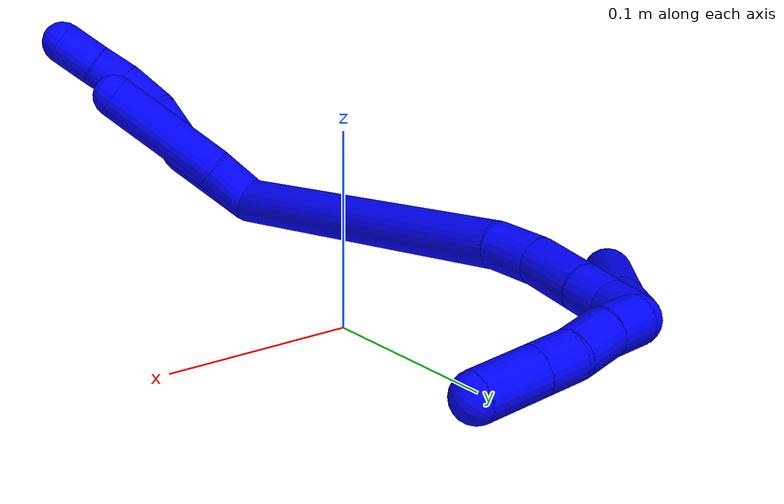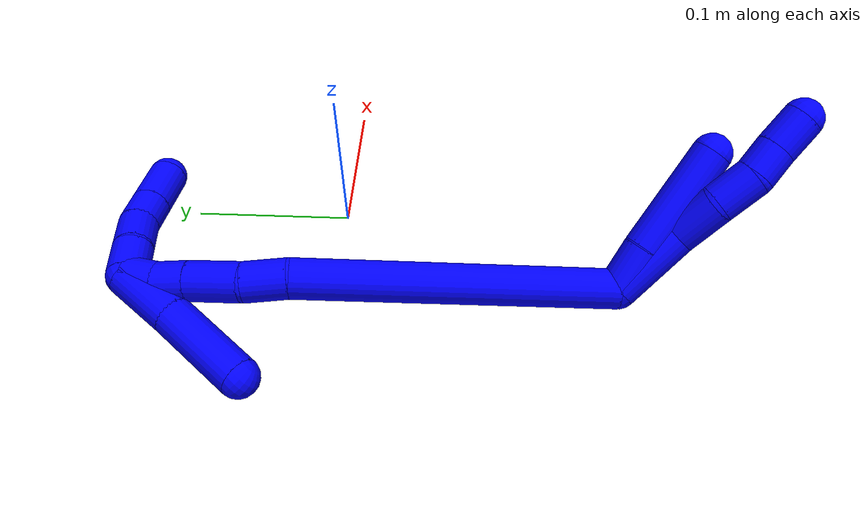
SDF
<sdf version="1.7">
 <world name="default">
  <model name="1">
   <static>0</static>
   <link name="1">
    <collision name="collision-cylinder-e_1_2_8">
     <pose>0.000252 -0.000121 0.024471 0.004957 0.010288 2.6e-05</pose>
     <geometry><cylinder><radius>0.0125</radius><length>0.048945</length></cylinder></geometry>
     <surface>
      <friction><ode><mu>1.16</mu><mu2>1.16</mu2><slip1>0</slip1><slip2>0</slip2></ode></friction>
      <contact><ode><kp>1e+06</kp><kd>1</kd><max_vel>0</max_vel><min_depth>0.001</min_depth></ode></contact>
     </surface>
    </collision>
    <visual name="visual-cylinder-e_1_2_8">
     <pose>0.000252 -0.000121 0.024471 0.004957 0.010288 2.6e-05</pose>
     <geometry><cylinder><radius>0.0125</radius><length>0.048945</length></cylinder></geometry>
     <material><ambient>0 0 1 1</ambient></material>
    </visual>
    <collision name="collision-cylinder-e_2_8_9">
     <pose>-0.004194 -0.001502 0.06341 0.086825 -0.312833 -0.013701</pose>
     <geometry><cylinder><radius>0.0125</radius><length>0.030526</length></cylinder></geometry>
     <surface>
      <friction><ode><mu>1.16</mu><mu2>1.16</mu2><slip1>0</slip1><slip2>0</slip2></ode></friction>
      <contact><ode><kp>1e+06</kp><kd>1</kd><max_vel>0</max_vel><min_depth>0.001</min_depth></ode></contact>
     </surface>
    </collision>
    <visual name="visual-cylinder-e_2_8_9">
     <pose>-0.004194 -0.001502 0.06341 0.086825 -0.312833 -0.013701</pose>
     <geometry><cylinder><radius>0.0125</radius><length>0.030526</length></cylinder></geometry>
     <material><ambient>0 0 1 1</ambient></material>
    </visual>
    <collision name="collision-cylinder-e_3_9_10">
     <pose>-0.009689 -0.00415 0.091014 0.105334 -0.060356 -0.003183</pose>
     <geometry><cylinder><radius>0.0125</radius><length>0.026467</length></cylinder></geometry>
     <surface>
      <friction><ode><mu>1.16</mu><mu2>1.16</mu2><slip1>0</slip1><slip2>0</slip2></ode></friction>
      <contact><ode><kp>1e+06</kp><kd>1</kd><max_vel>0</max_vel><min_depth>0.001</min_depth></ode></contact>
     </surface>
    </collision>
    <visual name="visual-cylinder-e_3_9_10">
     <pose>-0.009689 -0.00415 0.091014 0.105334 -0.060356 -0.003183</pose>
     <geometry><cylinder><radius>0.0125</radius><length>0.026467</length></cylinder></geometry>
     <material><ambient>0 0 1 1</ambient></material>
    </visual>
    <collision name="collision-cylinder-e_4_10_11">
     <pose>-0.009804 -0.003935 0.11405 -0.160593 0.06802 -0.005476</pose>
     <geometry><cylinder><radius>0.0125</radius><length>0.020104</length></cylinder></geometry>
     <surface>
      <friction><ode><mu>1.16</mu><mu2>1.16</mu2><slip1>0</slip1><slip2>0</slip2></ode></friction>
      <contact><ode><kp>1e+06</kp><kd>1</kd><max_vel>0</max_vel><min_depth>0.001</min_depth></ode></contact>
     </surface>
    </collision>
    <visual name="visual-cylinder-e_4_10_11">
     <pose>-0.009804 -0.003935 0.11405 -0.160593 0.06802 -0.005476</pose>
     <geometry><cylinder><radius>0.0125</radius><length>0.020104</length></cylinder></geometry>
     <material><ambient>0 0 1 1</ambient></material>
    </visual>
    <collision name="collision-cylinder-e_5_11_6">
     <pose>-0.008714 -0.001132 0.135861 -0.100378 0.033975 -0.001707</pose>
     <geometry><cylinder><radius>0.0125</radius><length>0.023957</length></cylinder></geometry>
     <surface>
      <friction><ode><mu>1.16</mu><mu2>1.16</mu2><slip1>0</slip1><slip2>0</slip2></ode></friction>
      <contact><ode><kp>1e+06</kp><kd>1</kd><max_vel>0</max_vel><min_depth>0.001</min_depth></ode></contact>
     </surface>
    </collision>
    <visual name="visual-cylinder-e_5_11_6">
     <pose>-0.008714 -0.001132 0.135861 -0.100378 0.033975 -0.001707</pose>
     <geometry><cylinder><radius>0.0125</radius><length>0.023957</length></cylinder></geometry>
     <material><ambient>0 0 1 1</ambient></material>
    </visual>
    <collision name="collision-cylinder-e_1_2_12">
     <pose>-0.000968 0.003591 0.014093 -0.249521 -0.066483 0.008341</pose>
     <geometry><cylinder><radius>0.0125</radius><length>0.029151</length></cylinder></geometry>
     <surface>
      <friction><ode><mu>1.16</mu><mu2>1.16</mu2><slip1>0</slip1><slip2>0</slip2></ode></friction>
      <contact><ode><kp>1e+06</kp><kd>1</kd><max_vel>0</max_vel><min_depth>0.001</min_depth></ode></contact>
     </surface>
    </collision>
    <visual name="visual-cylinder-e_1_2_12">
     <pose>-0.000968 0.003591 0.014093 -0.249521 -0.066483 0.008341</pose>
     <geometry><cylinder><radius>0.0125</radius><length>0.029151</length></cylinder></geometry>
     <material><ambient>0 0 1 1</ambient></material>
    </visual>
    <collision name="collision-cylinder-e_2_12_5">
     <pose>-0.001611 0.014364 0.062873 -0.204157 0.009191 -0.000942</pose>
     <geometry><cylinder><radius>0.0125</radius><length>0.070849</length></cylinder></geometry>
     <surface>
      <friction><ode><mu>1.16</mu><mu2>1.16</mu2><slip1>0</slip1><slip2>0</slip2></ode></friction>
      <contact><ode><kp>1e+06</kp><kd>1</kd><max_vel>0</max_vel><min_depth>0.001</min_depth></ode></contact>
     </surface>
    </collision>
    <visual name="visual-cylinder-e_2_12_5">
     <pose>-0.001611 0.014364 0.062873 -0.204157 0.009191 -0.000942</pose>
     <geometry><cylinder><radius>0.0125</radius><length>0.070849</length></cylinder></geometry>
     <material><ambient>0 0 1 1</ambient></material>
    </visual>
    <collision name="collision-cylinder-e_1_2_13">
     <pose>-0.029058 0.066722 -0.067569 -2.3625 -0.29696 0.698833</pose>
     <geometry><cylinder><radius>0.0125</radius><length>0.198612</length></cylinder></geometry>
     <surface>
      <friction><ode><mu>1.16</mu><mu2>1.16</mu2><slip1>0</slip1><slip2>0</slip2></ode></friction>
      <contact><ode><kp>1e+06</kp><kd>1</kd><max_vel>0</max_vel><min_depth>0.001</min_depth></ode></contact>
     </surface>
    </collision>
    <visual name="visual-cylinder-e_1_2_13">
     <pose>-0.029058 0.066722 -0.067569 -2.3625 -0.29696 0.698833</pose>
     <geometry><cylinder><radius>0.0125</radius><length>0.198612</length></cylinder></geometry>
     <material><ambient>0 0 1 1</ambient></material>
    </visual>
    <collision name="collision-cylinder-e_2_13_14">
     <pose>-0.060548 0.141719 -0.145834 -2.48308 -0.177868 0.510535</pose>
     <geometry><cylinder><radius>0.0125</radius><length>0.027481</length></cylinder></geometry>
     <surface>
      <friction><ode><mu>1.16</mu><mu2>1.16</mu2><slip1>0</slip1><slip2>0</slip2></ode></friction>
      <contact><ode><kp>1e+06</kp><kd>1</kd><max_vel>0</max_vel><min_depth>0.001</min_depth></ode></contact>
     </surface>
    </collision>
    <visual name="visual-cylinder-e_2_13_14">
     <pose>-0.060548 0.141719 -0.145834 -2.48308 -0.177868 0.510535</pose>
     <geometry><cylinder><radius>0.0125</radius><length>0.027481</length></cylinder></geometry>
     <material><ambient>0 0 1 1</ambient></material>
    </visual>
    <collision name="collision-cylinder-e_3_14_15">
     <pose>-0.063366 0.161618 -0.168553 -2.37313 -0.023122 0.057172</pose>
     <geometry><cylinder><radius>0.0125</radius><length>0.033454</length></cylinder></geometry>
     <surface>
      <friction><ode><mu>1.16</mu><mu2>1.16</mu2><slip1>0</slip1><slip2>0</slip2></ode></friction>
      <contact><ode><kp>1e+06</kp><kd>1</kd><max_vel>0</max_vel><min_depth>0.001</min_depth></ode></contact>
     </surface>
    </collision>
    <visual name="visual-cylinder-e_3_14_15">
     <pose>-0.063366 0.161618 -0.168553 -2.37313 -0.023122 0.057172</pose>
     <geometry><cylinder><radius>0.0125</radius><length>0.033454</length></cylinder></geometry>
     <material><ambient>0 0 1 1</ambient></material>
    </visual>
    <collision name="collision-cylinder-e_4_15_16">
     <pose>-0.064051 0.179831 -0.188248 -2.43189 -0.029537 0.079678</pose>
     <geometry><cylinder><radius>0.0125</radius><length>0.020236</length></cylinder></geometry>
     <surface>
      <friction><ode><mu>1.16</mu><mu2>1.16</mu2><slip1>0</slip1><slip2>0</slip2></ode></friction>
      <contact><ode><kp>1e+06</kp><kd>1</kd><max_vel>0</max_vel><min_depth>0.001</min_depth></ode></contact>
     </surface>
    </collision>
    <visual name="visual-cylinder-e_4_15_16">
     <pose>-0.064051 0.179831 -0.188248 -2.43189 -0.029537 0.079678</pose>
     <geometry><cylinder><radius>0.0125</radius><length>0.020236</length></cylinder></geometry>
     <material><ambient>0 0 1 1</ambient></material>
    </visual>
    <collision name="collision-cylinder-e_5_16_1">
     <pose>-0.064555 0.194522 -0.201962 -2.21164 -0.020221 0.040304</pose>
     <geometry><cylinder><radius>0.0125</radius><length>0.020216</length></cylinder></geometry>
     <surface>
      <friction><ode><mu>1.16</mu><mu2>1.16</mu2><slip1>0</slip1><slip2>0</slip2></ode></friction>
      <contact><ode><kp>1e+06</kp><kd>1</kd><max_vel>0</max_vel><min_depth>0.001</min_depth></ode></contact>
     </surface>
    </collision>
    <visual name="visual-cylinder-e_5_16_1">
     <pose>-0.064555 0.194522 -0.201962 -2.21164 -0.020221 0.040304</pose>
     <geometry><cylinder><radius>0.0125</radius><length>0.020216</length></cylinder></geometry>
     <material><ambient>0 0 1 1</ambient></material>
    </visual>
    <collision name="collision-cylinder-e_1_1_17">
     <pose>-0.057691 0.210355 -0.203758 -1.06872 0.675459 -0.409818</pose>
     <geometry><cylinder><radius>0.0125</radius><length>0.022608</length></cylinder></geometry>
     <surface>
      <friction><ode><mu>1.16</mu><mu2>1.16</mu2><slip1>0</slip1><slip2>0</slip2></ode></friction>
      <contact><ode><kp>1e+06</kp><kd>1</kd><max_vel>0</max_vel><min_depth>0.001</min_depth></ode></contact>
     </surface>
    </collision>
    <visual name="visual-cylinder-e_1_1_17">
     <pose>-0.057691 0.210355 -0.203758 -1.06872 0.675459 -0.409818</pose>
     <geometry><cylinder><radius>0.0125</radius><length>0.022608</length></cylinder></geometry>
     <material><ambient>0 0 1 1</ambient></material>
    </visual>
    <collision name="collision-cylinder-e_2_17_18">
     <pose>-0.042052 0.22603 -0.196363 -1.19314 0.786998 -0.549602</pose>
     <geometry><cylinder><radius>0.0125</radius><length>0.024204</length></cylinder></geometry>
     <surface>
      <friction><ode><mu>1.16</mu><mu2>1.16</mu2><slip1>0</slip1><slip2>0</slip2></ode></friction>
      <contact><ode><kp>1e+06</kp><kd>1</kd><max_vel>0</max_vel><min_depth>0.001</min_depth></ode></contact>
     </surface>
    </collision>
    <visual name="visual-cylinder-e_2_17_18">
     <pose>-0.042052 0.22603 -0.196363 -1.19314 0.786998 -0.549602</pose>
     <geometry><cylinder><radius>0.0125</radius><length>0.024204</length></cylinder></geometry>
     <material><ambient>0 0 1 1</ambient></material>
    </visual>
    <collision name="collision-cylinder-e_3_18_19">
     <pose>-0.025832 0.239134 -0.188798 -0.863381 0.844656 -0.408253</pose>
     <geometry><cylinder><radius>0.0125</radius><length>0.02046</length></cylinder></geometry>
     <surface>
      <friction><ode><mu>1.16</mu><mu2>1.16</mu2><slip1>0</slip1><slip2>0</slip2></ode></friction>
      <contact><ode><kp>1e+06</kp><kd>1</kd><max_vel>0</max_vel><min_depth>0.001</min_depth></ode></contact>
     </surface>
    </collision>
    <visual name="visual-cylinder-e_3_18_19">
     <pose>-0.025832 0.239134 -0.188798 -0.863381 0.844656 -0.408253</pose>
     <geometry><cylinder><radius>0.0125</radius><length>0.02046</length></cylinder></geometry>
     <material><ambient>0 0 1 1</ambient></material>
    </visual>
    <collision name="collision-cylinder-e_4_19_4">
     <pose>-0.005941 0.252537 -0.177311 -0.861519 0.845169 -0.407552</pose>
     <geometry><cylinder><radius>0.0125</radius><length>0.032729</length></cylinder></geometry>
     <surface>
      <friction><ode><mu>1.16</mu><mu2>1.16</mu2><slip1>0</slip1><slip2>0</slip2></ode></friction>
      <contact><ode><kp>1e+06</kp><kd>1</kd><max_vel>0</max_vel><min_depth>0.001</min_depth></ode></contact>
     </surface>
    </collision>
    <visual name="visual-cylinder-e_4_19_4">
     <pose>-0.005941 0.252537 -0.177311 -0.861519 0.845169 -0.407552</pose>
     <geometry><cylinder><radius>0.0125</radius><length>0.032729</length></cylinder></geometry>
     <material><ambient>0 0 1 1</ambient></material>
    </visual>
    <collision name="collision-cylinder-e_1_1_20">
     <pose>-0.067385 0.182912 -0.203887 1.36489 -0.129687 -0.105449</pose>
     <geometry><cylinder><radius>0.0125</radius><length>0.040613</length></cylinder></geometry>
     <surface>
      <friction><ode><mu>1.16</mu><mu2>1.16</mu2><slip1>0</slip1><slip2>0</slip2></ode></friction>
      <contact><ode><kp>1e+06</kp><kd>1</kd><max_vel>0</max_vel><min_depth>0.001</min_depth></ode></contact>
     </surface>
    </collision>
    <visual name="visual-cylinder-e_1_1_20">
     <pose>-0.067385 0.182912 -0.203887 1.36489 -0.129687 -0.105449</pose>
     <geometry><cylinder><radius>0.0125</radius><length>0.040613</length></cylinder></geometry>
     <material><ambient>0 0 1 1</ambient></material>
    </visual>
    <collision name="collision-cylinder-e_2_20_3">
     <pose>-0.076069 0.134723 -0.193936 1.36874 -0.205442 -0.16782</pose>
     <geometry><cylinder><radius>0.0125</radius><length>0.059387</length></cylinder></geometry>
     <surface>
      <friction><ode><mu>1.16</mu><mu2>1.16</mu2><slip1>0</slip1><slip2>0</slip2></ode></friction>
      <contact><ode><kp>1e+06</kp><kd>1</kd><max_vel>0</max_vel><min_depth>0.001</min_depth></ode></contact>
     </surface>
    </collision>
    <visual name="visual-cylinder-e_2_20_3">
     <pose>-0.076069 0.134723 -0.193936 1.36874 -0.205442 -0.16782</pose>
     <geometry><cylinder><radius>0.0125</radius><length>0.059387</length></cylinder></geometry>
     <material><ambient>0 0 1 1</ambient></material>
    </visual>
    <collision name="collision-sphere-3">
     <pose>-0.082126 0.106246 -0.188102 0 -0 0</pose>
     <geometry><sphere><radius>0.0125</radius></sphere></geometry>
     <surface>
      <friction><ode><mu>1.16</mu><mu2>1.16</mu2><slip1>0</slip1><slip2>0</slip2></ode></friction>
      <contact><ode><kp>1e+06</kp><kd>1</kd><max_vel>0</max_vel><min_depth>0.001</min_depth></ode></contact>
     </surface>
    </collision>
    <visual name="visual-sphere-3">
     <pose>-0.082126 0.106246 -0.188102 0 -0 0</pose>
     <geometry><sphere><radius>0.0125</radius></sphere></geometry>
     <material><ambient>0 0 1 1</ambient></material>
    </visual>
    <collision name="collision-sphere-20">
     <pose>-0.070011 0.163201 -0.19977 0 -0 0</pose>
     <geometry><sphere><radius>0.0125</radius></sphere></geometry>
     <surface>
      <friction><ode><mu>1.16</mu><mu2>1.16</mu2><slip1>0</slip1><slip2>0</slip2></ode></friction>
      <contact><ode><kp>1e+06</kp><kd>1</kd><max_vel>0</max_vel><min_depth>0.001</min_depth></ode></contact>
     </surface>
    </collision>
    <visual name="visual-sphere-20">
     <pose>-0.070011 0.163201 -0.19977 0 -0 0</pose>
     <geometry><sphere><radius>0.0125</radius></sphere></geometry>
     <material><ambient>0 0 1 1</ambient></material>
    </visual>
    <collision name="collision-sphere-4">
     <pose>0.006301 0.260778 -0.170238 0 -0 0</pose>
     <geometry><sphere><radius>0.0125</radius></sphere></geometry>
     <surface>
      <friction><ode><mu>1.16</mu><mu2>1.16</mu2><slip1>0</slip1><slip2>0</slip2></ode></friction>
      <contact><ode><kp>1e+06</kp><kd>1</kd><max_vel>0</max_vel><min_depth>0.001</min_depth></ode></contact>
     </surface>
    </collision>
    <visual name="visual-sphere-4">
     <pose>0.006301 0.260778 -0.170238 0 -0 0</pose>
     <geometry><sphere><radius>0.0125</radius></sphere></geometry>
     <material><ambient>0 0 1 1</ambient></material>
    </visual>
    <collision name="collision-sphere-6">
     <pose>-0.008307 6.8e-05 0.147772 0 -0 0</pose>
     <geometry><sphere><radius>0.0125</radius></sphere></geometry>
     <surface>
      <friction><ode><mu>1.16</mu><mu2>1.16</mu2><slip1>0</slip1><slip2>0</slip2></ode></friction>
      <contact><ode><kp>1e+06</kp><kd>1</kd><max_vel>0</max_vel><min_depth>0.001</min_depth></ode></contact>
     </surface>
    </collision>
    <visual name="visual-sphere-6">
     <pose>-0.008307 6.8e-05 0.147772 0 -0 0</pose>
     <geometry><sphere><radius>0.0125</radius></sphere></geometry>
     <material><ambient>0 0 1 1</ambient></material>
    </visual>
    <collision name="collision-sphere-11">
     <pose>-0.009121 -0.002332 0.12395 0 -0 0</pose>
     <geometry><sphere><radius>0.0125</radius></sphere></geometry>
     <surface>
      <friction><ode><mu>1.16</mu><mu2>1.16</mu2><slip1>0</slip1><slip2>0</slip2></ode></friction>
      <contact><ode><kp>1e+06</kp><kd>1</kd><max_vel>0</max_vel><min_depth>0.001</min_depth></ode></contact>
     </surface>
    </collision>
    <visual name="visual-sphere-11">
     <pose>-0.009121 -0.002332 0.12395 0 -0 0</pose>
     <geometry><sphere><radius>0.0125</radius></sphere></geometry>
     <material><ambient>0 0 1 1</ambient></material>
    </visual>
    <collision name="collision-sphere-10">
     <pose>-0.010488 -0.005539 0.10415 0 -0 0</pose>
     <geometry><sphere><radius>0.0125</radius></sphere></geometry>
     <surface>
      <friction><ode><mu>1.16</mu><mu2>1.16</mu2><slip1>0</slip1><slip2>0</slip2></ode></friction>
      <contact><ode><kp>1e+06</kp><kd>1</kd><max_vel>0</max_vel><min_depth>0.001</min_depth></ode></contact>
     </surface>
    </collision>
    <visual name="visual-sphere-10">
     <pose>-0.010488 -0.005539 0.10415 0 -0 0</pose>
     <geometry><sphere><radius>0.0125</radius></sphere></geometry>
     <material><ambient>0 0 1 1</ambient></material>
    </visual>
    <collision name="collision-sphere-9">
     <pose>-0.008891 -0.002761 0.077877 0 -0 0</pose>
     <geometry><sphere><radius>0.0125</radius></sphere></geometry>
     <surface>
      <friction><ode><mu>1.16</mu><mu2>1.16</mu2><slip1>0</slip1><slip2>0</slip2></ode></friction>
      <contact><ode><kp>1e+06</kp><kd>1</kd><max_vel>0</max_vel><min_depth>0.001</min_depth></ode></contact>
     </surface>
    </collision>
    <visual name="visual-sphere-9">
     <pose>-0.008891 -0.002761 0.077877 0 -0 0</pose>
     <geometry><sphere><radius>0.0125</radius></sphere></geometry>
     <material><ambient>0 0 1 1</ambient></material>
    </visual>
    <collision name="collision-sphere-2">
     <geometry><sphere><radius>0.0125</radius></sphere></geometry>
     <surface>
      <friction><ode><mu>1.16</mu><mu2>1.16</mu2><slip1>0</slip1><slip2>0</slip2></ode></friction>
      <contact><ode><kp>1e+06</kp><kd>1</kd><max_vel>0</max_vel><min_depth>0.001</min_depth></ode></contact>
     </surface>
    </collision>
    <visual name="visual-sphere-2">
     <geometry><sphere><radius>0.0125</radius></sphere></geometry>
     <material><ambient>0 0 1 1</ambient></material>
    </visual>
    <collision name="collision-sphere-19">
     <pose>-0.018183 0.244297 -0.184384 0 -0 0</pose>
     <geometry><sphere><radius>0.0125</radius></sphere></geometry>
     <surface>
      <friction><ode><mu>1.16</mu><mu2>1.16</mu2><slip1>0</slip1><slip2>0</slip2></ode></friction>
      <contact><ode><kp>1e+06</kp><kd>1</kd><max_vel>0</max_vel><min_depth>0.001</min_depth></ode></contact>
     </surface>
    </collision>
    <visual name="visual-sphere-19">
     <pose>-0.018183 0.244297 -0.184384 0 -0 0</pose>
     <geometry><sphere><radius>0.0125</radius></sphere></geometry>
     <material><ambient>0 0 1 1</ambient></material>
    </visual>
    <collision name="collision-sphere-8">
     <pose>0.000504 -0.000243 0.048942 0 -0 0</pose>
     <geometry><sphere><radius>0.0125</radius></sphere></geometry>
     <surface>
      <friction><ode><mu>1.16</mu><mu2>1.16</mu2><slip1>0</slip1><slip2>0</slip2></ode></friction>
      <contact><ode><kp>1e+06</kp><kd>1</kd><max_vel>0</max_vel><min_depth>0.001</min_depth></ode></contact>
     </surface>
    </collision>
    <visual name="visual-sphere-8">
     <pose>0.000504 -0.000243 0.048942 0 -0 0</pose>
     <geometry><sphere><radius>0.0125</radius></sphere></geometry>
     <material><ambient>0 0 1 1</ambient></material>
    </visual>
    <collision name="collision-sphere-12">
     <pose>-0.001937 0.007183 0.028186 0 -0 0</pose>
     <geometry><sphere><radius>0.0125</radius></sphere></geometry>
     <surface>
      <friction><ode><mu>1.16</mu><mu2>1.16</mu2><slip1>0</slip1><slip2>0</slip2></ode></friction>
      <contact><ode><kp>1e+06</kp><kd>1</kd><max_vel>0</max_vel><min_depth>0.001</min_depth></ode></contact>
     </surface>
    </collision>
    <visual name="visual-sphere-12">
     <pose>-0.001937 0.007183 0.028186 0 -0 0</pose>
     <geometry><sphere><radius>0.0125</radius></sphere></geometry>
     <material><ambient>0 0 1 1</ambient></material>
    </visual>
    <collision name="collision-sphere-5">
     <pose>-0.001285 0.021546 0.097561 0 -0 0</pose>
     <geometry><sphere><radius>0.0125</radius></sphere></geometry>
     <surface>
      <friction><ode><mu>1.16</mu><mu2>1.16</mu2><slip1>0</slip1><slip2>0</slip2></ode></friction>
      <contact><ode><kp>1e+06</kp><kd>1</kd><max_vel>0</max_vel><min_depth>0.001</min_depth></ode></contact>
     </surface>
    </collision>
    <visual name="visual-sphere-5">
     <pose>-0.001285 0.021546 0.097561 0 -0 0</pose>
     <geometry><sphere><radius>0.0125</radius></sphere></geometry>
     <material><ambient>0 0 1 1</ambient></material>
    </visual>
    <collision name="collision-sphere-13">
     <pose>-0.058117 0.133443 -0.135138 0 -0 0</pose>
     <geometry><sphere><radius>0.0125</radius></sphere></geometry>
     <surface>
      <friction><ode><mu>1.16</mu><mu2>1.16</mu2><slip1>0</slip1><slip2>0</slip2></ode></friction>
      <contact><ode><kp>1e+06</kp><kd>1</kd><max_vel>0</max_vel><min_depth>0.001</min_depth></ode></contact>
     </surface>
    </collision>
    <visual name="visual-sphere-13">
     <pose>-0.058117 0.133443 -0.135138 0 -0 0</pose>
     <geometry><sphere><radius>0.0125</radius></sphere></geometry>
     <material><ambient>0 0 1 1</ambient></material>
    </visual>
    <collision name="collision-sphere-14">
     <pose>-0.062979 0.149995 -0.15653 0 -0 0</pose>
     <geometry><sphere><radius>0.0125</radius></sphere></geometry>
     <surface>
      <friction><ode><mu>1.16</mu><mu2>1.16</mu2><slip1>0</slip1><slip2>0</slip2></ode></friction>
      <contact><ode><kp>1e+06</kp><kd>1</kd><max_vel>0</max_vel><min_depth>0.001</min_depth></ode></contact>
     </surface>
    </collision>
    <visual name="visual-sphere-14">
     <pose>-0.062979 0.149995 -0.15653 0 -0 0</pose>
     <geometry><sphere><radius>0.0125</radius></sphere></geometry>
     <material><ambient>0 0 1 1</ambient></material>
    </visual>
    <collision name="collision-sphere-15">
     <pose>-0.063753 0.17324 -0.180576 0 -0 0</pose>
     <geometry><sphere><radius>0.0125</radius></sphere></geometry>
     <surface>
      <friction><ode><mu>1.16</mu><mu2>1.16</mu2><slip1>0</slip1><slip2>0</slip2></ode></friction>
      <contact><ode><kp>1e+06</kp><kd>1</kd><max_vel>0</max_vel><min_depth>0.001</min_depth></ode></contact>
     </surface>
    </collision>
    <visual name="visual-sphere-15">
     <pose>-0.063753 0.17324 -0.180576 0 -0 0</pose>
     <geometry><sphere><radius>0.0125</radius></sphere></geometry>
     <material><ambient>0 0 1 1</ambient></material>
    </visual>
    <collision name="collision-sphere-16">
     <pose>-0.06435 0.186421 -0.19592 0 -0 0</pose>
     <geometry><sphere><radius>0.0125</radius></sphere></geometry>
     <surface>
      <friction><ode><mu>1.16</mu><mu2>1.16</mu2><slip1>0</slip1><slip2>0</slip2></ode></friction>
      <contact><ode><kp>1e+06</kp><kd>1</kd><max_vel>0</max_vel><min_depth>0.001</min_depth></ode></contact>
     </surface>
    </collision>
    <visual name="visual-sphere-16">
     <pose>-0.06435 0.186421 -0.19592 0 -0 0</pose>
     <geometry><sphere><radius>0.0125</radius></sphere></geometry>
     <material><ambient>0 0 1 1</ambient></material>
    </visual>
    <collision name="collision-sphere-1">
     <pose>-0.064759 0.202622 -0.208004 0 -0 0</pose>
     <geometry><sphere><radius>0.0125</radius></sphere></geometry>
     <surface>
      <friction><ode><mu>1.16</mu><mu2>1.16</mu2><slip1>0</slip1><slip2>0</slip2></ode></friction>
      <contact><ode><kp>1e+06</kp><kd>1</kd><max_vel>0</max_vel><min_depth>0.001</min_depth></ode></contact>
     </surface>
    </collision>
    <visual name="visual-sphere-1">
     <pose>-0.064759 0.202622 -0.208004 0 -0 0</pose>
     <geometry><sphere><radius>0.0125</radius></sphere></geometry>
     <material><ambient>0 0 1 1</ambient></material>
    </visual>
    <collision name="collision-sphere-18">
     <pose>-0.033481 0.233972 -0.193212 0 -0 0</pose>
     <geometry><sphere><radius>0.0125</radius></sphere></geometry>
     <surface>
      <friction><ode><mu>1.16</mu><mu2>1.16</mu2><slip1>0</slip1><slip2>0</slip2></ode></friction>
      <contact><ode><kp>1e+06</kp><kd>1</kd><max_vel>0</max_vel><min_depth>0.001</min_depth></ode></contact>
     </surface>
    </collision>
    <visual name="visual-sphere-18">
     <pose>-0.033481 0.233972 -0.193212 0 -0 0</pose>
     <geometry><sphere><radius>0.0125</radius></sphere></geometry>
     <material><ambient>0 0 1 1</ambient></material>
    </visual>
    <collision name="collision-sphere-17">
     <pose>-0.050623 0.218088 -0.199513 0 -0 0</pose>
     <geometry><sphere><radius>0.0125</radius></sphere></geometry>
     <surface>
      <friction><ode><mu>1.16</mu><mu2>1.16</mu2><slip1>0</slip1><slip2>0</slip2></ode></friction>
      <contact><ode><kp>1e+06</kp><kd>1</kd><max_vel>0</max_vel><min_depth>0.001</min_depth></ode></contact>
     </surface>
    </collision>
    <visual name="visual-sphere-17">
     <pose>-0.050623 0.218088 -0.199513 0 -0 0</pose>
     <geometry><sphere><radius>0.0125</radius></sphere></geometry>
     <material><ambient>0 0 1 1</ambient></material>
    </visual>
    <inertial>
     <pose>-0.031168 0.093057 -0.071769 0 -0 0</pose>
     <mass>0.75</mass>
     <inertia>
      <ixx>0.000982</ixx>
      <ixy>0</ixy>
      <ixz>0</ixz>
      <iyy>0.000206</iyy>
      <iyz>0</iyz>
      <izz>-0.000237</izz>
     </inertia>
    </inertial>
   </link>
   <pose>-0.06197 -0.174361 0.011678 0.60495 0.863724 -0.241723</pose>
  </model>
 </world>
</sdf>
